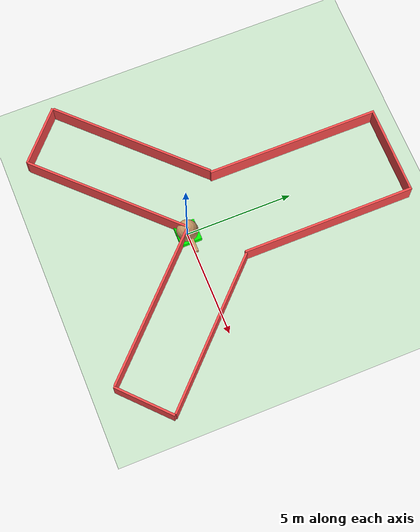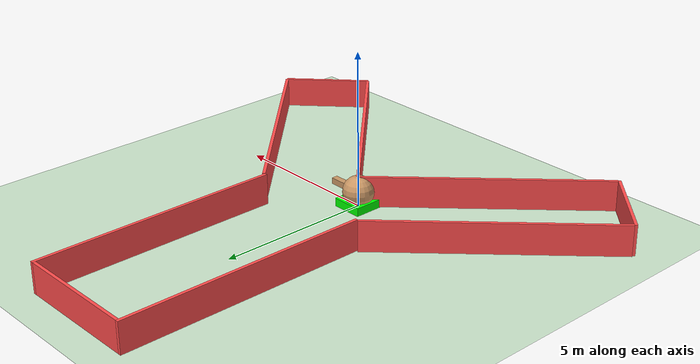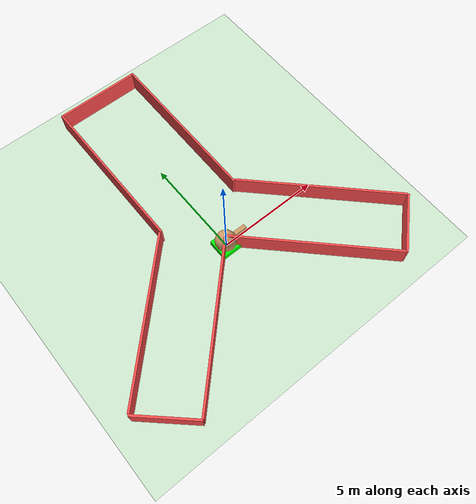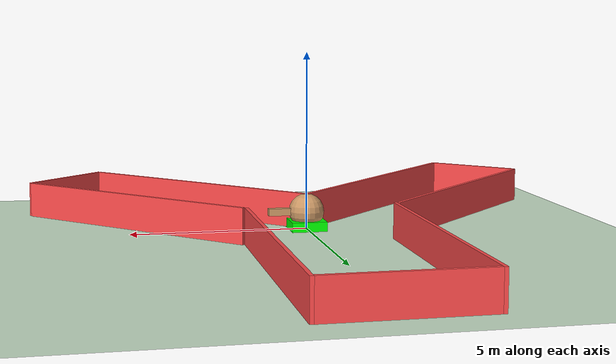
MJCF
<mujoco>
  <compiler angle="degree" coordinate="local" inertiafromgeom="true"/>
  <option integrator="RK4" timestep="0.02"/>
  <default>
    <joint armature="0" damping="0" limited="false"/>
    <geom conaffinity="0" condim="3" density="100" friction="1 0.5 0.5" margin="0" rgba="0.8 0.6 0.4 1"/>
  </default>
  <asset>
    <texture builtin="gradient" height="100" rgb1="1 1 1" rgb2="0 0 0" type="skybox" width="100"/>
    <texture builtin="flat" height="1278" mark="cross" markrgb="1 1 1" name="texgeom" random="0.01" rgb1="0.8 0.6 0.4" rgb2="0.8 0.6 0.4" type="cube" width="127"/>
    <texture builtin="checker" height="100" name="texplane" rgb1="0 0 0" rgb2="0 0 0" type="2d" width="100"/>
    <material name="MatPlane" reflectance="0.5" shininess="1" specular="1" texrepeat="30 30" texture="texplane"/>
    <material name="geom" texture="texgeom" texuniform="true"/>
  </asset>
  <worldbody>

    <light cutoff="100" diffuse="1 1 1" dir="-0 0 -1.3" directional="true" exponent="1" pos="0 0 1.3" specular=".1 .1 .1"/>
    <geom conaffinity="1" condim="3" material="MatPlane" name="floor" pos="0 0 0" rgba="0.8 0.9 0.8 1" size="40 40 40" type="plane"/>

    <body name="torso" pos="0 0 0">
      <geom name="pointbody" pos="0 0 0.5" size="0.5" type="sphere"/>
      <geom name="pointarrow" pos="0.6 0 0.5" size="0.5 0.1 0.1" type="box"/>
      <joint axis="1 0 0" name="ballx" pos="0 0 0" type="slide"/>
      <joint axis="0 1 0" name="bally" pos="0 0 0" type="slide"/>
      <joint axis="0 0 1" limited="false" name="rot" pos="0 0 0" type="hinge"/>
    </body>

    <body name="target" pos="0 0 0">
        <geom conaffinity="0" contype="0" pos="0 0 0.05" density="0.001" size="0.5 0.5 0.2" rgba="0. 1. 0. 1" type="box" />
    </body>

    <!-- bounding walls -->

    <!-- 4 corners -->
    <geom rgba="1 0.3 0.3 1" type="box" contype="1" size="2.0 0.05 0.5" name="wall1" conaffinity="1" pos="0 10.0 0.5" mass="1000"/>
    <geom rgba="1 0.3 0.3 1" type="box" contype="1" size="1.45 0.05 0.5" name="wall2" conaffinity="1" pos="6.65 -4.6 0.5" mass="1000" euler="0 0 43"/>
    <geom rgba="1 0.3 0.3 1" type="box" contype="1" size="1.45 0.05 0.5" name="wall3" conaffinity="1" pos="-6.65 -4.6 0.5" mass="1000" euler="0 0 -43"/>
    <!-- back block -->
    <!-- front block -->
    <geom rgba="1 0.3 0.3 1" type="box" contype="1" size="0.05 4.05 0.5" name="wall6" conaffinity="1" pos="-2.05 6.0 0.5" mass="1000"/>
    <geom rgba="1 0.3 0.3 1" type="box" contype="1" size="0.05 4.05 0.5" name="wall7" conaffinity="1" pos="2.05 6.0 0.5" mass="1000"/>
    <!-- middle-left block -->
    <geom rgba="1 0.3 0.3 1" type="box" contype="1" size="3.925 0.05 0.5" name="wall9" conaffinity="1" pos="4.9 -0.8 0.5" mass="1000" euler="0 0 -45"/>
    <geom rgba="1 0.3 0.3 1" type="box" contype="1" size="3.925 0.05 0.5" name="wall12" conaffinity="1" pos="2.8 -2.775 0.5" mass="1000" euler="0 0 -45"/>
    <!-- middle-right -->
    <geom rgba="1 0.3 0.3 1" type="box" contype="1" size="3.925 0.05 0.5" name="wall11" conaffinity="1" pos="-4.9 -0.8 0.5" mass="1000" euler="0 0 45"/>
    <geom rgba="1 0.3 0.3 1" type="box" contype="1" size="3.925 0.05 0.5" name="wall13" conaffinity="1" pos="-2.8 -2.775 0.5" mass="1000" euler="0 0 45"/>

    <!-- bounding walls -->

  </worldbody>
  <actuator>
    <!-- Those are just dummy actuators for providing ranges -->
    <position ctrllimited="true" ctrlrange="-10 10" joint="ballx"/>
    <position ctrllimited="true" ctrlrange="-10 10" joint="bally"/>
  </actuator>
</mujoco>
